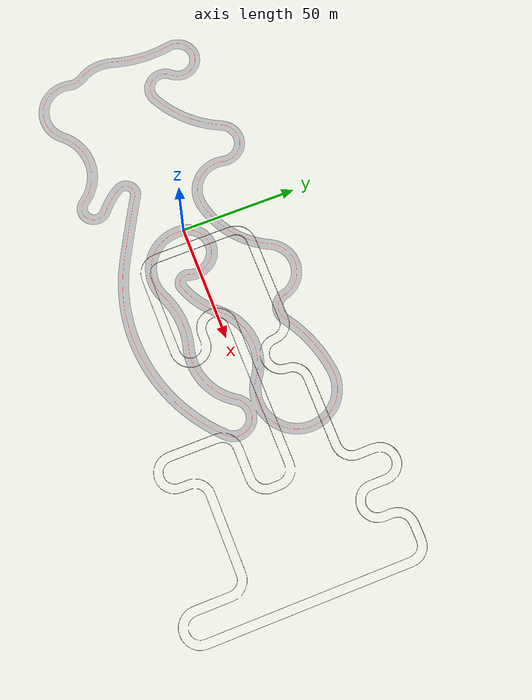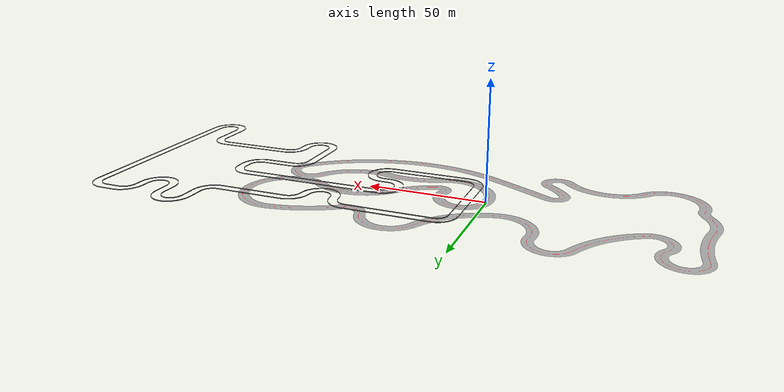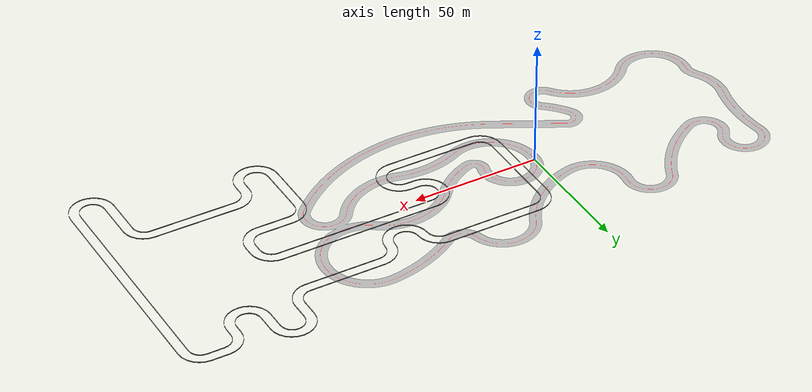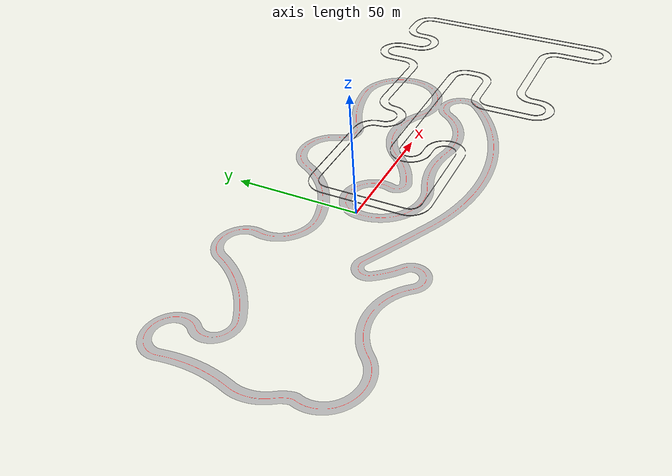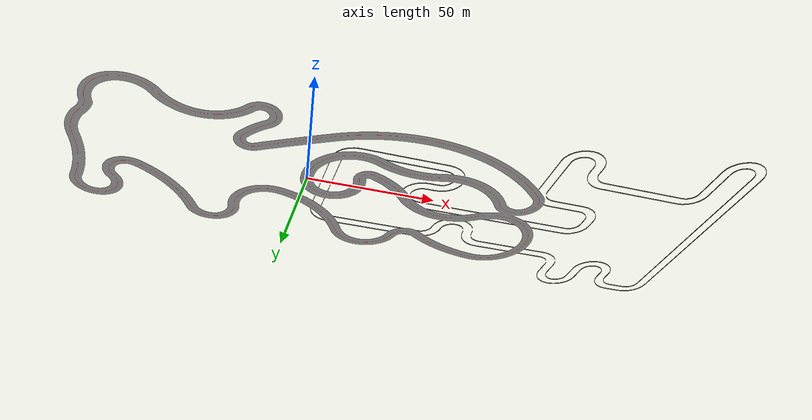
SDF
<?xml version="1.0" ?>
<sdf version="1.3">
<model name="circuito2">
	<static>true</static>
	<link name="mapa">
		<pose>0 0 0 0 0 0</pose>
		<collision name="collision">
			<geometry>
				<plane>
					<normal>0 0 1</normal>
					<size>1000 1000</size>
				</plane>
			</geometry>
		</collision>
		<visual name="visual">
			<pose>0 0 0 0 0 0</pose>
			<geometry>
				<mesh>
					<uri>model://many_curves/meshes/circuit_curve.dae</uri>
				</mesh>
			</geometry>
		</visual>
	</link>
	<link name="pared">
            <pose>0 0 0 0 0 0</pose>
            <collision name="collision">
               <geometry>
                  <mesh>
                        <uri>model://many_curves/meshes/pared.dae</uri>
                  </mesh>
                                </geometry>
          </collision>
            <visual name="visual">
                <pose>0 0 0 0 0 0</pose>
                <geometry>
                  <mesh>
                        <uri>model://many_curves/meshes/pared.dae</uri>
                  </mesh>
              </geometry>
          </visual>
	</link>
</model>
</sdf>
